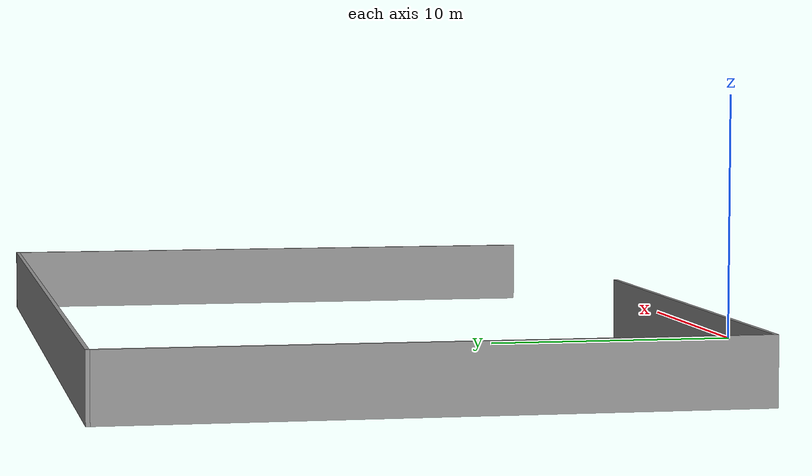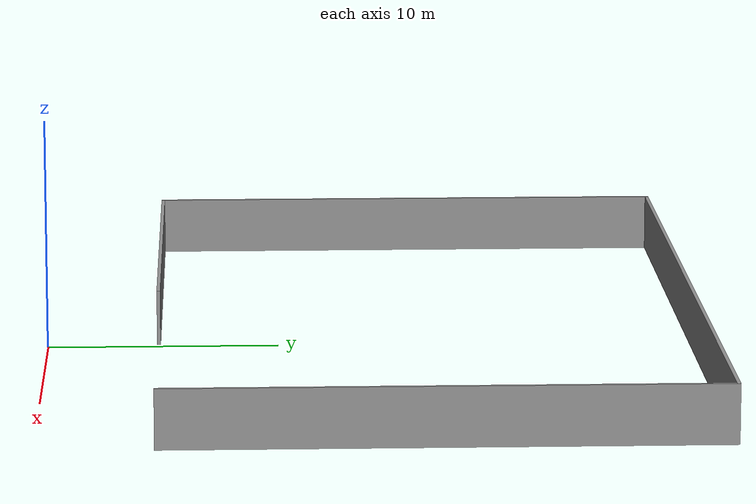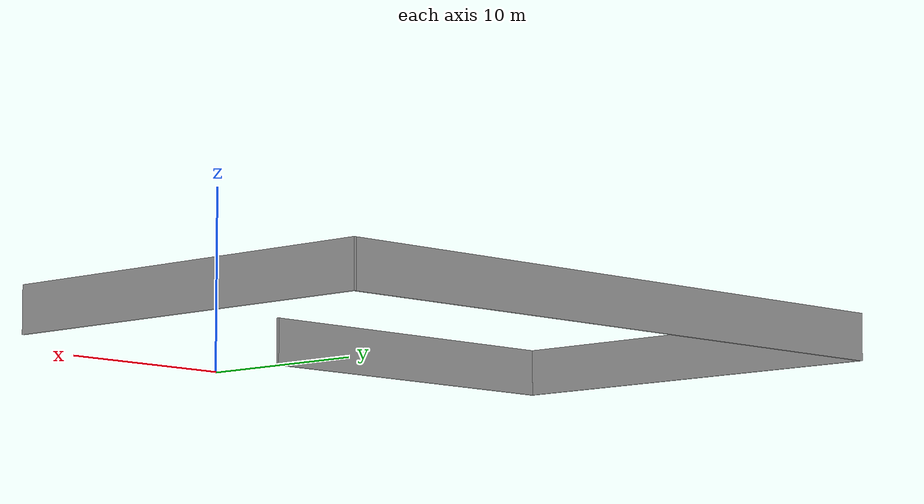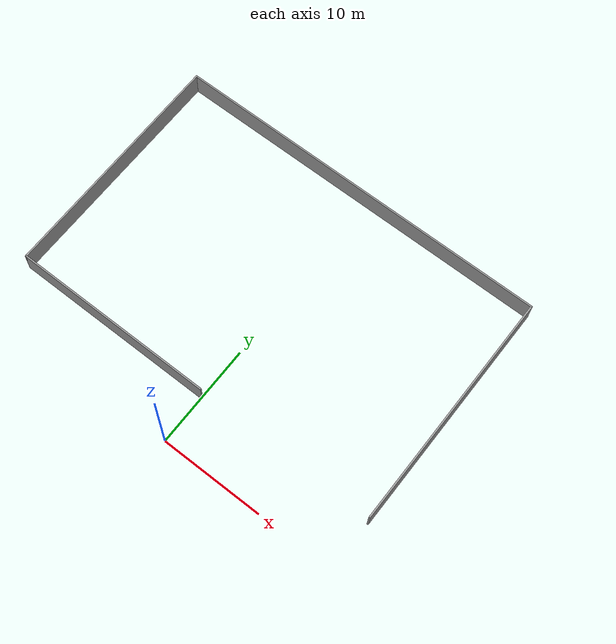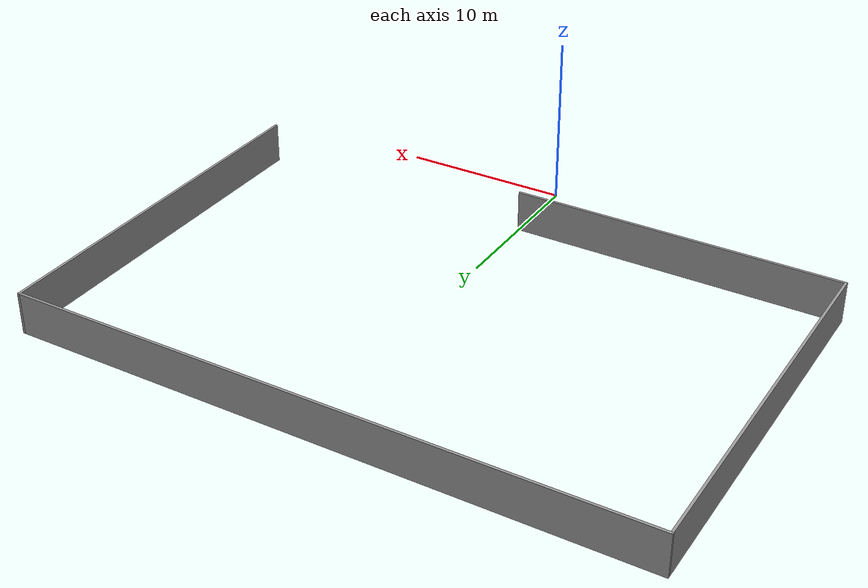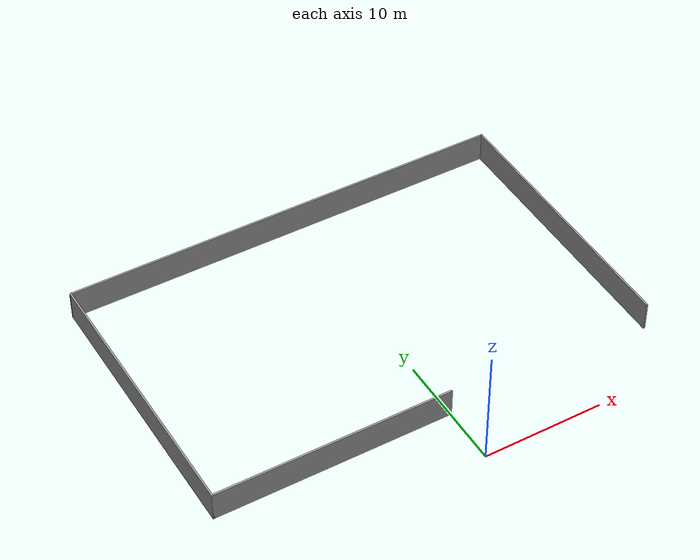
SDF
<?xml version='1.0'?>
<sdf version='1.6'>
  <model name='factoryWall2'>
    <pose frame=''>-1.04 16.4 0 0 -0 0</pose>
    <link name='Wall_12'>
      <collision name='Wall_12_Collision'>
        <geometry>
          <box>
            <size>23.25 0.15 2.5</size>
          </box>
        </geometry>
        <pose frame=''>0 0 1.25 0 -0 0</pose>
      </collision>
      <visual name='Wall_12_Visual'>
        <pose frame=''>0 0 1.25 0 -0 0</pose>
        <geometry>
          <box>
            <size>23.25 0.15 2.5</size>
          </box>
        </geometry>
        <material>
          <script>
            <uri>file://media/materials/scripts/gazebo.material</uri>
            <name>Gazebo/Grey</name>
          </script>
          <ambient>1 1 1 1</ambient>
        </material>
        <meta>
          <layer>0</layer>
        </meta>
      </visual>
      <pose frame=''>18.56 0.050001 0 0 -0 -1.5708</pose>
    </link>
    <link name='Wall_14'>
      <collision name='Wall_14_Collision'>
        <geometry>
          <box>
            <size>23.35 0.15 2.5</size>
          </box>
        </geometry>
        <pose frame=''>0 0 1.25 0 -0 0</pose>
      </collision>
      <visual name='Wall_14_Visual'>
        <pose frame=''>0 0 1.25 0 -0 0</pose>
        <geometry>
          <box>
            <size>23.35 0.15 2.5</size>
          </box>
        </geometry>
        <material>
          <script>
            <uri>file://media/materials/scripts/gazebo.material</uri>
            <name>Gazebo/Grey</name>
          </script>
          <ambient>1 1 1 1</ambient>
        </material>
        <meta>
          <layer>0</layer>
        </meta>
      </visual>
      <pose frame=''>-18.56 0 0 0 -0 -1.5708</pose>
    </link>
    <link name='Wall_16'>
      <collision name='Wall_16_Collision'>
        <geometry>
          <box>
            <size>19.75 0.15 2.5</size>
          </box>
        </geometry>
        <pose frame=''>0 0 1.25 0 -0 0</pose>
      </collision>
      <visual name='Wall_16_Visual'>
        <pose frame=''>0 0 1.25 0 -0 0</pose>
        <geometry>
          <box>
            <size>19.75 0.15 2.5</size>
          </box>
        </geometry>
        <material>
          <script>
            <uri>file://media/materials/scripts/gazebo.material</uri>
            <name>Gazebo/Grey</name>
          </script>
          <ambient>1 1 1 1</ambient>
        </material>
        <meta>
          <layer>0</layer>
        </meta>
      </visual>
      <pose frame=''>-8.76 -11.6 0 0 -0 0</pose>
    </link>
    <link name='Wall_8'>
      <collision name='Wall_8_Collision'>
        <geometry>
          <box>
            <size>37.27 0.15 2.5</size>
          </box>
        </geometry>
        <pose frame=''>0 0 1.25 0 -0 0</pose>
      </collision>
      <visual name='Wall_8_Visual'>
        <pose frame=''>0 0 1.25 0 -0 0</pose>
        <geometry>
          <box>
            <size>37.27 0.15 2.5</size>
          </box>
        </geometry>
        <material>
          <script>
            <uri>file://media/materials/scripts/gazebo.material</uri>
            <name>Gazebo/Grey</name>
          </script>
          <ambient>1 1 1 1</ambient>
        </material>
        <meta>
          <layer>0</layer>
        </meta>
      </visual>
      <pose frame=''>0 11.6 0 0 -0 3.14159</pose>
    </link>
    <static>1</static>
  </model>
</sdf>
